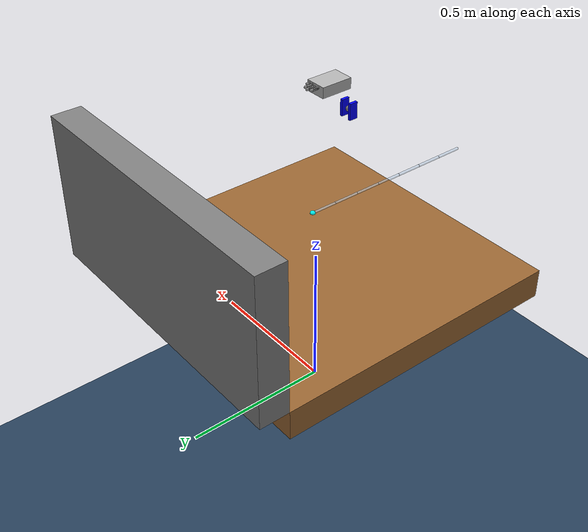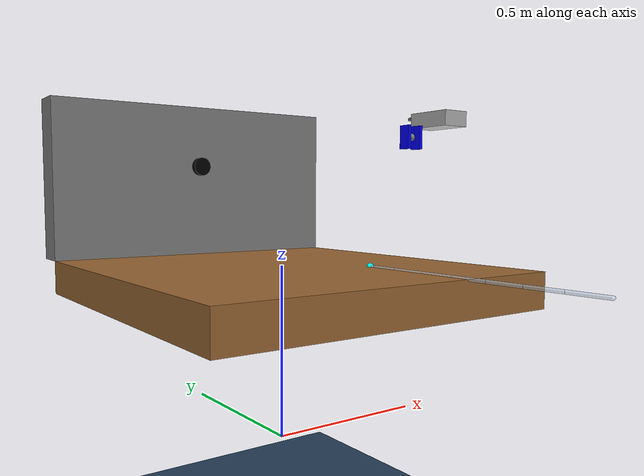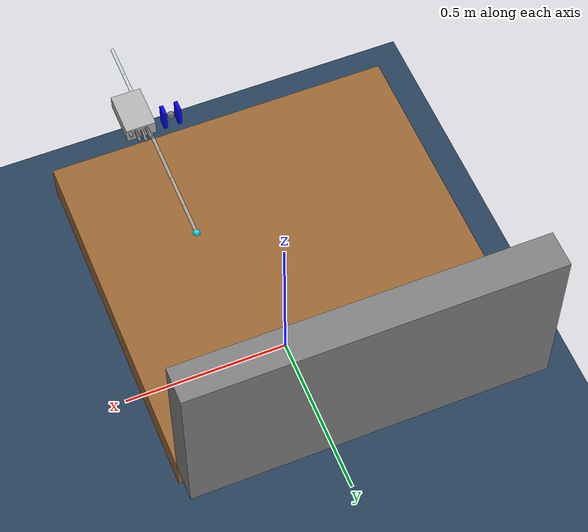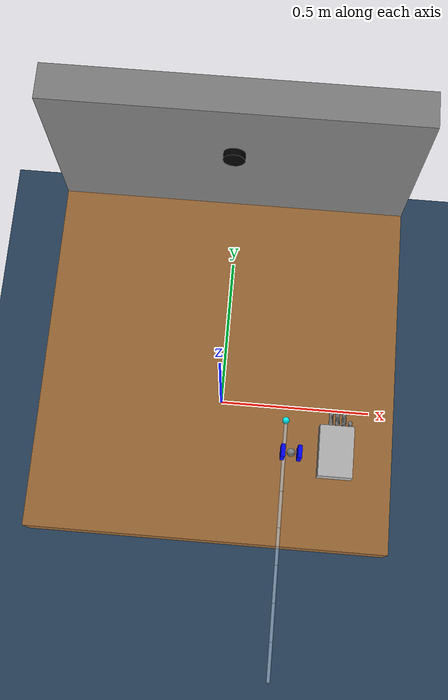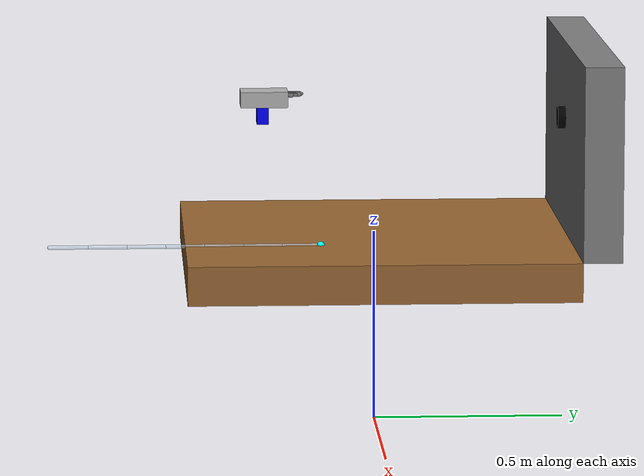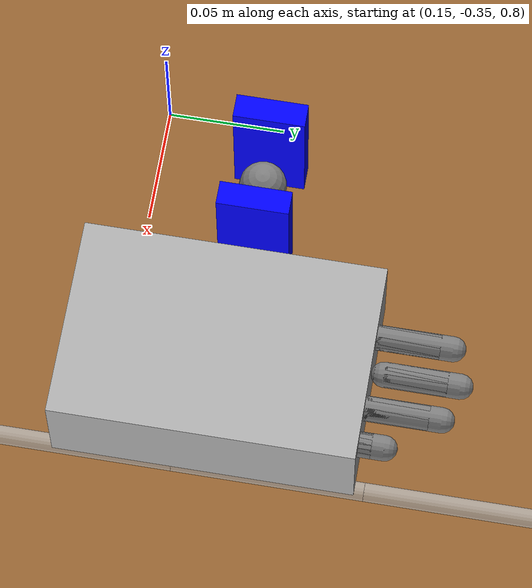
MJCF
<mujoco>
  <asset>
    <texture name="grid" type="2d" builtin="checker" rgb1=".1 .2 .3"
             rgb2=".2 .3 .4" width="300" height="300" mark="none"/>
    <material name="grid" texture="grid" texrepeat="1 1"
              texuniform="true" reflectance=".2"/>
  </asset>

  <worldbody>
    <light name="light" pos="0 0 2"/>
    <geom name="floor" type="plane" pos="0 0 -.5" size="4 4 .1" material="grid"/>
    <camera name="fixed" pos="0 -2 1" xyaxes="1 0 0 0 1 2"/>

    <!-- Table -->
    <body name="table" pos="0 0 0">
      <geom name="table_top" type="box" size="0.5 0.5 0.05" pos="0 0 0.45" rgba="0.6 0.4 0.2 1"/>
    </body>

    <!-- Wall with hole -->
    <body name="wall" pos="0 0.55 0.75">
      <geom name="wall_panel" type="box" size="0.5 0.05 0.25" rgba="0.5 0.5 0.5 1"/>
      <geom type="cylinder" size="0.03 0.02" pos="0 -0.05 0.05" rgba="0 0 0 1" euler="90 0 0"/>
    </body>

        <!-- Fiber optic cable on the table with a hanging tail -->
<body name="fiber_root" pos="0.2 -0.85 0.5">
  <joint name="fiber_root_free" type="free"/>
  <geom type="capsule" size="0.005 0.05" fromto="0 0 0 0 0.1 0" rgba="0.8 0.9 1 0.5"/>

  <!-- Segment 1 -->
  <body name="fiber_seg1" pos="0 0.1 0">
    <joint type="ball" damping="0.05"/>
    <geom type="capsule" size="0.005 0.05" fromto="0 0 0 0 0.1 0" rgba="0.8 0.9 1 0.5"/>

    <!-- Segment 2 -->
    <body name="fiber_seg2" pos="0 0.1 0">
      <joint type="ball" damping="0.05"/>
      <geom type="capsule" size="0.005 0.05" fromto="0 0 0 0 0.1 0" rgba="0.8 0.9 1 0.5"/>

      <!-- Segment 3 -->
      <body name="fiber_seg3" pos="0 0.1 0">
        <joint type="ball" damping="0.05"/>
        <geom type="capsule" size="0.005 0.05" fromto="0 0 0 0 0.1 0" rgba="0.8 0.9 1 0.5"/>

        <!-- Segment 4 -->
        <body name="fiber_seg4" pos="0 0.1 0">
          <joint type="ball" damping="0.05"/>
          <geom type="capsule" size="0.005 0.05" fromto="0 0 0 0 0.1 0" rgba="0.8 0.9 1 0.5"/>

          <!-- Segment 5 -->
          <body name="fiber_seg5" pos="0 0.1 0">
            <joint type="ball" damping="0.05"/>
            <geom type="capsule" size="0.005 0.05" fromto="0 0 0 0 0.1 0" rgba="0.8 0.9 1 0.5"/>

            <!-- Segment 6 with fiber tip -->
            <body name="fiber_seg6" pos="0 0.1 0">
              <joint type="ball" damping="0.05"/>
              <geom type="capsule" size="0.005 0.05" fromto="0 0 0 0 0.1 0" rgba="0.8 0.9 1 0.5"/>

              <!-- Glowing tip -->
              <body name="fiber_tip" pos="0 0.1 0">
                <geom name="fiber_light" type="sphere" size="0.01" rgba="0 1 1 1"/>
              </body>
            </body>

          </body>
        </body>

      </body>
    </body>
  </body>
</body>

    <!-- Simple 2-Finger Gripper -->
    <body name="gripper_base" pos="0.2 -0.3 0.85">
      <geom type="sphere" size="0.01" rgba="0.5 0.5 0.5 1"/>
      <!-- Left finger -->
      <body name="left_finger" pos="-0.02 0 0">
        <joint name="left_slide" type="slide" axis="1 0 0" range="-0.02 0" damping="1"/>
        <geom type="box" size="0.005 0.015 0.03" rgba="0 0 1 1"/>
      </body>
      <!-- Right finger -->
      <body name="right_finger" pos="0.02 0 0">
        <joint name="right_slide" type="slide" axis="-1 0 0" range="-0.02 0" damping="1"/>
        <geom type="box" size="0.005 0.015 0.03" rgba="0 0 1 1"/>
      </body>
    </body>

    <!-- Placeholder hand with 22 DoF -->
<body name="hand" pos="0.3 -0.3 0.9">
  <!-- Wrist (2 DoF) -->
  <joint name="wrist_pitch" type="hinge" axis="1 0 0" range="-45 45"/>
  <joint name="wrist_yaw" type="hinge" axis="0 0 1" range="-45 45"/>
  <geom type="box" size="0.04 0.06 0.02" rgba="0.7 0.7 0.7 1"/> <!-- palm -->

  <!-- Fingers -->
  <!-- Thumb (4 joints) -->
  <body name="thumb" pos="-0.03 0.03 0.01">
    <joint type="hinge" axis="0 1 0" range="-45 45"/>
    <geom type="capsule" size="0.005 0.025" fromto="0 0 0 0 0.025 0"/>
    <body>
      <joint type="hinge" axis="0 1 0" range="-45 45"/>
      <geom type="capsule" size="0.005 0.02" fromto="0 0 0 0 0.02 0"/>
      <body>
        <joint type="hinge" axis="0 1 0" range="-45 45"/>
        <geom type="capsule" size="0.004 0.015" fromto="0 0 0 0 0.015 0"/>
        <body>
          <joint type="hinge" axis="0 1 0" range="-45 45"/>
          <geom type="capsule" size="0.003 0.01" fromto="0 0 0 0 0.01 0"/>
        </body>
      </body>
    </body>
  </body>

  <!-- Index, Middle, Ring, Pinky (4 fingers × 4 joints) -->
  <!-- Index -->
  <body name="index" pos="-0.015 0.06 0.01">
    <joint type="hinge" axis="0 1 0" range="-45 45"/>
    <geom type="capsule" size="0.005 0.03" fromto="0 0 0 0 0.03 0"/>
    <body>
      <joint type="hinge" axis="0 1 0" range="-45 45"/>
      <geom type="capsule" size="0.005 0.025" fromto="0 0 0 0 0.025 0"/>
      <body>
        <joint type="hinge" axis="0 1 0" range="-45 45"/>
        <geom type="capsule" size="0.004 0.02" fromto="0 0 0 0 0.02 0"/>
        <body>
          <joint type="hinge" axis="0 1 0" range="-45 45"/>
          <geom type="capsule" size="0.003 0.015" fromto="0 0 0 0 0.015 0"/>
        </body>
      </body>
    </body>
  </body>

  <!-- Middle -->
  <body name="middle" pos="0 0.065 0.01">
    <joint type="hinge" axis="0 1 0" range="-45 45"/>
    <geom type="capsule" size="0.005 0.03" fromto="0 0 0 0 0.03 0"/>
    <body>
      <joint type="hinge" axis="0 1 0" range="-45 45"/>
      <geom type="capsule" size="0.005 0.025" fromto="0 0 0 0 0.025 0"/>
      <body>
        <joint type="hinge" axis="0 1 0" range="-45 45"/>
        <geom type="capsule" size="0.004 0.02" fromto="0 0 0 0 0.02 0"/>
        <body>
          <joint type="hinge" axis="0 1 0" range="-45 45"/>
          <geom type="capsule" size="0.003 0.015" fromto="0 0 0 0 0.015 0"/>
        </body>
      </body>
    </body>
  </body>

  <!-- Ring -->
  <body name="ring" pos="0.015 0.06 0.01">
    <joint type="hinge" axis="0 1 0" range="-45 45"/>
    <geom type="capsule" size="0.005 0.03" fromto="0 0 0 0 0.03 0"/>
    <body>
      <joint type="hinge" axis="0 1 0" range="-45 45"/>
      <geom type="capsule" size="0.005 0.025" fromto="0 0 0 0 0.025 0"/>
      <body>
        <joint type="hinge" axis="0 1 0" range="-45 45"/>
        <geom type="capsule" size="0.004 0.02" fromto="0 0 0 0 0.02 0"/>
        <body>
          <joint type="hinge" axis="0 1 0" range="-45 45"/>
          <geom type="capsule" size="0.003 0.015" fromto="0 0 0 0 0.015 0"/>
        </body>
      </body>
    </body>
  </body>

  <!-- Pinky -->
  <body name="pinky" pos="0.03 0.045 0.01">
    <joint type="hinge" axis="0 1 0" range="-45 45"/>
    <geom type="capsule" size="0.005 0.025" fromto="0 0 0 0 0.025 0"/>
    <body>
      <joint type="hinge" axis="0 1 0" range="-45 45"/>
      <geom type="capsule" size="0.005 0.02" fromto="0 0 0 0 0.02 0"/>
      <body>
        <joint type="hinge" axis="0 1 0" range="-45 45"/>
        <geom type="capsule" size="0.004 0.015" fromto="0 0 0 0 0.015 0"/>
        <body>
          <joint type="hinge" axis="0 1 0" range="-45 45"/>
          <geom type="capsule" size="0.003 0.01" fromto="0 0 0 0 0.01 0"/>
        </body>
      </body>
    </body>
  </body>
</body>

  </worldbody>

  <actuator>
    <!-- Gripper actuators -->
    <position name="left_act" joint="left_slide" ctrlrange="-0.02 0" kp="500"/>
    <position name="right_act" joint="right_slide" ctrlrange="-0.02 0" kp="500"/>
  </actuator>

</mujoco>
